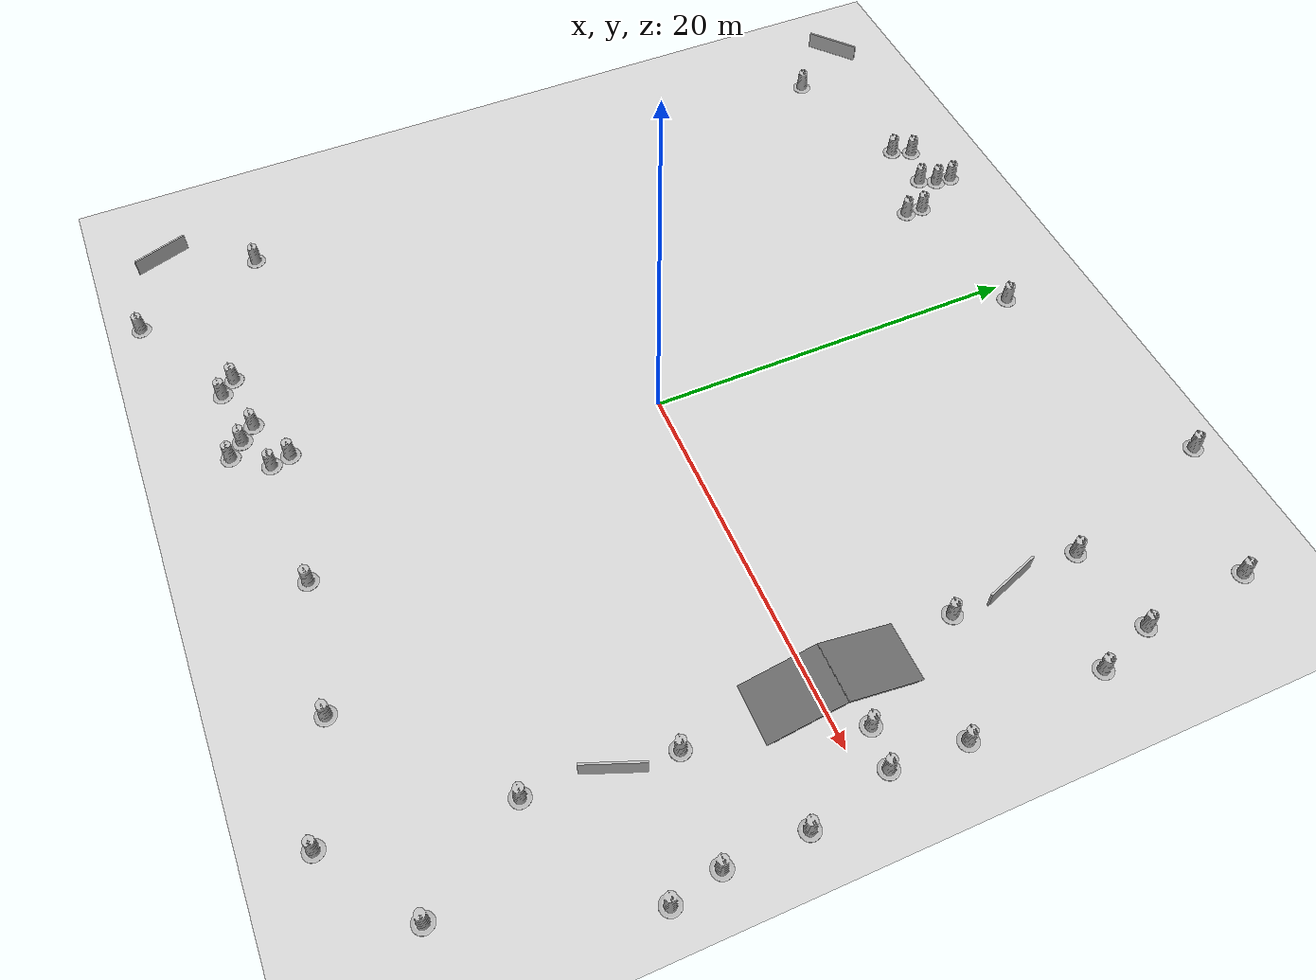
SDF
<sdf version="1.6">
 <world name="default">
  <model name="igvc_basic_ground">
   <static>1</static>
   <link name="link">
    <collision name="collision">
     <geometry><plane><normal>0 0 1</normal><size>50 50</size></plane></geometry>
     <surface><friction><ode><mu>100</mu><mu2>50</mu2></ode></friction></surface>
    </collision>
    <visual name="visual">
     <cast_shadows>0</cast_shadows>
     <geometry><plane><normal>0 0 1</normal><size>50 50</size></plane></geometry>
     <material>
      <script>
       <uri>model://igvc_basic_ground/materials/scripts</uri>
       <uri>model://igvc_basic_ground/materials/textures</uri>
       <name>igvc_pavement/Image</name>
      </script>
     </material>
    </visual>
    <velocity_decay><linear>0</linear><angular>0</angular></velocity_decay>
   </link>
  </model>
  <physics name="default_physics" default="0" type="ode">
   <max_step_size>0.001</max_step_size>
   <real_time_factor>1</real_time_factor>
   <real_time_update_rate>1000</real_time_update_rate>
  </physics>
  <scene><ambient>1.0 1.0 1.0 1</ambient><background>0.7 0.7 0.7 1</background><shadows>1</shadows></scene>
  <spherical_coordinates>
   <surface_model>EARTH_WGS84</surface_model>
   <latitude_deg>0</latitude_deg>
   <longitude_deg>0</longitude_deg>
   <elevation>0</elevation>
   <heading_deg>0</heading_deg>
  </spherical_coordinates>
  <model name="Construction Barrel_1">
   <link name="link">
    <inertial>
     <pose>0 0 0.4 0 -0 0</pose>
     <mass>500</mass>
     <inertia><ixx>51.2096</ixx><iyy>51.2096</iyy><izz>25</izz><ixy>0</ixy><ixz>0</ixz><iyz>0</iyz></inertia>
    </inertial>
    <collision name="collision">
     <geometry><mesh><uri>model://construction_barrel/meshes/construction_barrel.dae</uri></mesh></geometry>
    </collision>
    <visual name="visual">
     <geometry><mesh><uri>model://construction_barrel/meshes/construction_barrel.dae</uri></mesh></geometry>
    </visual>
    <velocity_decay><linear>0</linear><angular>0</angular></velocity_decay>
   </link>
   <pose>-17.75 -16.5 -4e-06 -5e-06 -7e-06 -0.002983</pose>
   <static>0</static>
  </model>
  <model name="Construction Barrel_2">
   <link name="link">
    <inertial>
     <pose>0 0 0.4 0 -0 0</pose>
     <mass>500</mass>
     <inertia><ixx>51.2096</ixx><iyy>51.2096</iyy><izz>25</izz><ixy>0</ixy><ixz>0</ixz><iyz>0</iyz></inertia>
    </inertial>
    <collision name="collision">
     <geometry><mesh><uri>model://construction_barrel/meshes/construction_barrel.dae</uri></mesh></geometry>
    </collision>
    <visual name="visual">
     <geometry><mesh><uri>model://construction_barrel/meshes/construction_barrel.dae</uri></mesh></geometry>
    </visual>
    <velocity_decay><linear>0</linear><angular>0</angular></velocity_decay>
   </link>
   <pose>-15.25 -23.25 -4e-06 -5e-06 -7e-06 -0.002768</pose>
   <static>0</static>
  </model>
  <model name="Construction Barrel_3">
   <link name="link">
    <inertial>
     <pose>0 0 0.4 0 -0 0</pose>
     <mass>500</mass>
     <inertia><ixx>51.2096</ixx><iyy>51.2096</iyy><izz>25</izz><ixy>0</ixy><ixz>0</ixz><iyz>0</iyz></inertia>
    </inertial>
    <collision name="collision">
     <geometry><mesh><uri>model://construction_barrel/meshes/construction_barrel.dae</uri></mesh></geometry>
    </collision>
    <visual name="visual">
     <geometry><mesh><uri>model://construction_barrel/meshes/construction_barrel.dae</uri></mesh></geometry>
    </visual>
    <velocity_decay><linear>0</linear><angular>0</angular></velocity_decay>
   </link>
   <pose>-10 -19.5 -4e-06 -5e-06 -7e-06 -0.002768</pose>
   <static>0</static>
  </model>
  <model name="Construction Barrel_4">
   <link name="link">
    <inertial>
     <pose>0 0 0.4 0 -0 0</pose>
     <mass>500</mass>
     <inertia><ixx>51.2096</ixx><iyy>51.2096</iyy><izz>25</izz><ixy>0</ixy><ixz>0</ixz><iyz>0</iyz></inertia>
    </inertial>
    <collision name="collision">
     <geometry><mesh><uri>model://construction_barrel/meshes/construction_barrel.dae</uri></mesh></geometry>
    </collision>
    <visual name="visual">
     <geometry><mesh><uri>model://construction_barrel/meshes/construction_barrel.dae</uri></mesh></geometry>
    </visual>
    <velocity_decay><linear>0</linear><angular>0</angular></velocity_decay>
   </link>
   <pose>-9.25 -20.25 0 1e-06 1e-06 -0.0028</pose>
   <static>0</static>
  </model>
  <model name="Construction Barrel_5">
   <link name="link">
    <inertial>
     <pose>0 0 0.4 0 -0 0</pose>
     <mass>500</mass>
     <inertia><ixx>51.2096</ixx><iyy>51.2096</iyy><izz>25</izz><ixy>0</ixy><ixz>0</ixz><iyz>0</iyz></inertia>
    </inertial>
    <collision name="collision">
     <geometry><mesh><uri>model://construction_barrel/meshes/construction_barrel.dae</uri></mesh></geometry>
    </collision>
    <visual name="visual">
     <geometry><mesh><uri>model://construction_barrel/meshes/construction_barrel.dae</uri></mesh></geometry>
    </visual>
    <velocity_decay><linear>0</linear><angular>0</angular></velocity_decay>
   </link>
   <pose>-6 -20 -4e-06 -5e-06 -7e-06 -0.002735</pose>
   <static>0</static>
  </model>
  <model name="Construction Barrel_6">
   <link name="link">
    <inertial>
     <pose>0 0 0.4 0 -0 0</pose>
     <mass>500</mass>
     <inertia><ixx>51.2096</ixx><iyy>51.2096</iyy><izz>25</izz><ixy>0</ixy><ixz>0</ixz><iyz>0</iyz></inertia>
    </inertial>
    <collision name="collision">
     <geometry><mesh><uri>model://construction_barrel/meshes/construction_barrel.dae</uri></mesh></geometry>
    </collision>
    <visual name="visual">
     <geometry><mesh><uri>model://construction_barrel/meshes/construction_barrel.dae</uri></mesh></geometry>
    </visual>
    <velocity_decay><linear>0</linear><angular>0</angular></velocity_decay>
   </link>
   <pose>-5.25 -20.75 -4e-06 -5e-06 -7e-06 -0.002679</pose>
   <static>0</static>
  </model>
  <model name="Construction Barrel_7">
   <link name="link">
    <inertial>
     <pose>0 0 0.4 0 -0 0</pose>
     <mass>500</mass>
     <inertia><ixx>51.2096</ixx><iyy>51.2096</iyy><izz>25</izz><ixy>0</ixy><ixz>0</ixz><iyz>0</iyz></inertia>
    </inertial>
    <collision name="collision">
     <geometry><mesh><uri>model://construction_barrel/meshes/construction_barrel.dae</uri></mesh></geometry>
    </collision>
    <visual name="visual">
     <geometry><mesh><uri>model://construction_barrel/meshes/construction_barrel.dae</uri></mesh></geometry>
    </visual>
    <velocity_decay><linear>0</linear><angular>0</angular></velocity_decay>
   </link>
   <pose>-6.75 -19.25 0 1e-06 1e-06 -0.002542</pose>
   <static>0</static>
  </model>
  <model name="Construction Barrel_8">
   <link name="link">
    <inertial>
     <pose>0 0 0.4 0 -0 0</pose>
     <mass>500</mass>
     <inertia><ixx>51.2096</ixx><iyy>51.2096</iyy><izz>25</izz><ixy>0</ixy><ixz>0</ixz><iyz>0</iyz></inertia>
    </inertial>
    <collision name="collision">
     <geometry><mesh><uri>model://construction_barrel/meshes/construction_barrel.dae</uri></mesh></geometry>
    </collision>
    <visual name="visual">
     <geometry><mesh><uri>model://construction_barrel/meshes/construction_barrel.dae</uri></mesh></geometry>
    </visual>
    <velocity_decay><linear>0</linear><angular>0</angular></velocity_decay>
   </link>
   <pose>-4.25 -18 -2e-06 -5e-06 -4e-06 0.001778</pose>
   <static>0</static>
  </model>
  <model name="Construction Barrel_9">
   <link name="link">
    <inertial>
     <pose>0 0 0.4 0 -0 0</pose>
     <mass>500</mass>
     <inertia><ixx>51.2096</ixx><iyy>51.2096</iyy><izz>25</izz><ixy>0</ixy><ixz>0</ixz><iyz>0</iyz></inertia>
    </inertial>
    <collision name="collision">
     <geometry><mesh><uri>model://construction_barrel/meshes/construction_barrel.dae</uri></mesh></geometry>
    </collision>
    <visual name="visual">
     <geometry><mesh><uri>model://construction_barrel/meshes/construction_barrel.dae</uri></mesh></geometry>
    </visual>
    <velocity_decay><linear>0</linear><angular>0</angular></velocity_decay>
   </link>
   <pose>-4 -19 -3e-06 -5e-06 -4e-06 -0.041479</pose>
   <static>0</static>
  </model>
  <model name="Construction Barrel_10">
   <link name="link">
    <inertial>
     <pose>0 0 0.4 0 -0 0</pose>
     <mass>500</mass>
     <inertia><ixx>51.2096</ixx><iyy>51.2096</iyy><izz>25</izz><ixy>0</ixy><ixz>0</ixz><iyz>0</iyz></inertia>
    </inertial>
    <collision name="collision">
     <geometry><mesh><uri>model://construction_barrel/meshes/construction_barrel.dae</uri></mesh></geometry>
    </collision>
    <visual name="visual">
     <geometry><mesh><uri>model://construction_barrel/meshes/construction_barrel.dae</uri></mesh></geometry>
    </visual>
    <velocity_decay><linear>0</linear><angular>0</angular></velocity_decay>
   </link>
   <pose>3 -19 -0 1e-06 -1e-06 0.05713</pose>
   <static>0</static>
  </model>
  <model name="Construction Barrel_11">
   <link name="link">
    <inertial>
     <pose>0 0 0.4 0 -0 0</pose>
     <mass>500</mass>
     <inertia><ixx>51.2096</ixx><iyy>51.2096</iyy><izz>25</izz><ixy>0</ixy><ixz>0</ixz><iyz>0</iyz></inertia>
    </inertial>
    <collision name="collision">
     <geometry><mesh><uri>model://construction_barrel/meshes/construction_barrel.dae</uri></mesh></geometry>
    </collision>
    <visual name="visual">
     <geometry><mesh><uri>model://construction_barrel/meshes/construction_barrel.dae</uri></mesh></geometry>
    </visual>
    <velocity_decay><linear>0</linear><angular>0</angular></velocity_decay>
   </link>
   <pose>9.75 -20 -1e-06 0 5e-06 0.03848</pose>
   <static>0</static>
  </model>
  <model name="Construction Barrel_12">
   <link name="link">
    <inertial>
     <pose>0 0 0.4 0 -0 0</pose>
     <mass>500</mass>
     <inertia><ixx>51.2096</ixx><iyy>51.2096</iyy><izz>25</izz><ixy>0</ixy><ixz>0</ixz><iyz>0</iyz></inertia>
    </inertial>
    <collision name="collision">
     <geometry><mesh><uri>model://construction_barrel/meshes/construction_barrel.dae</uri></mesh></geometry>
    </collision>
    <visual name="visual">
     <geometry><mesh><uri>model://construction_barrel/meshes/construction_barrel.dae</uri></mesh></geometry>
    </visual>
    <velocity_decay><linear>0</linear><angular>0</angular></velocity_decay>
   </link>
   <pose>15.25 -22 -4e-06 -5e-06 -7e-06 -0.002189</pose>
   <static>0</static>
  </model>
  <model name="Construction Barrel_13">
   <link name="link">
    <inertial>
     <pose>0 0 0.4 0 -0 0</pose>
     <mass>500</mass>
     <inertia><ixx>51.2096</ixx><iyy>51.2096</iyy><izz>25</izz><ixy>0</ixy><ixz>0</ixz><iyz>0</iyz></inertia>
    </inertial>
    <collision name="collision">
     <geometry><mesh><uri>model://construction_barrel/meshes/construction_barrel.dae</uri></mesh></geometry>
    </collision>
    <visual name="visual">
     <geometry><mesh><uri>model://construction_barrel/meshes/construction_barrel.dae</uri></mesh></geometry>
    </visual>
    <velocity_decay><linear>0</linear><angular>0</angular></velocity_decay>
   </link>
   <pose>19.75 -18.75 -4e-06 -5e-06 -7e-06 -0.002115</pose>
   <static>0</static>
  </model>
  <model name="Construction Barrel_14">
   <link name="link">
    <inertial>
     <pose>0 0 0.4 0 -0 0</pose>
     <mass>500</mass>
     <inertia><ixx>51.2096</ixx><iyy>51.2096</iyy><izz>25</izz><ixy>0</ixy><ixz>0</ixz><iyz>0</iyz></inertia>
    </inertial>
    <collision name="collision">
     <geometry><mesh><uri>model://construction_barrel/meshes/construction_barrel.dae</uri></mesh></geometry>
    </collision>
    <visual name="visual">
     <geometry><mesh><uri>model://construction_barrel/meshes/construction_barrel.dae</uri></mesh></geometry>
    </visual>
    <velocity_decay><linear>0</linear><angular>0</angular></velocity_decay>
   </link>
   <pose>16.5 -13.5 -0 -1e-06 -0 -0.047595</pose>
   <static>0</static>
  </model>
  <model name="Construction Barrel_15">
   <link name="link">
    <inertial>
     <pose>0 0 0.4 0 -0 0</pose>
     <mass>500</mass>
     <inertia><ixx>51.2096</ixx><iyy>51.2096</iyy><izz>25</izz><ixy>0</ixy><ixz>0</ixz><iyz>0</iyz></inertia>
    </inertial>
    <collision name="collision">
     <geometry><mesh><uri>model://construction_barrel/meshes/construction_barrel.dae</uri></mesh></geometry>
    </collision>
    <visual name="visual">
     <geometry><mesh><uri>model://construction_barrel/meshes/construction_barrel.dae</uri></mesh></geometry>
    </visual>
    <velocity_decay><linear>0</linear><angular>0</angular></velocity_decay>
   </link>
   <pose>23 -9.5 1e-06 3e-06 2e-06 -3e-05</pose>
   <static>0</static>
  </model>
  <model name="Construction Barrel_16">
   <link name="link">
    <inertial>
     <pose>0 0 0.4 0 -0 0</pose>
     <mass>500</mass>
     <inertia><ixx>51.2096</ixx><iyy>51.2096</iyy><izz>25</izz><ixy>0</ixy><ixz>0</ixz><iyz>0</iyz></inertia>
    </inertial>
    <collision name="collision">
     <geometry><mesh><uri>model://construction_barrel/meshes/construction_barrel.dae</uri></mesh></geometry>
    </collision>
    <visual name="visual">
     <geometry><mesh><uri>model://construction_barrel/meshes/construction_barrel.dae</uri></mesh></geometry>
    </visual>
    <velocity_decay><linear>0</linear><angular>0</angular></velocity_decay>
   </link>
   <pose>17.25 -6.5 -4e-06 -5e-06 -7e-06 -0.001843</pose>
   <static>0</static>
  </model>
  <model name="Construction Barrel_17">
   <link name="link">
    <inertial>
     <pose>0 0 0.4 0 -0 0</pose>
     <mass>500</mass>
     <inertia><ixx>51.2096</ixx><iyy>51.2096</iyy><izz>25</izz><ixy>0</ixy><ixz>0</ixz><iyz>0</iyz></inertia>
    </inertial>
    <collision name="collision">
     <geometry><mesh><uri>model://construction_barrel/meshes/construction_barrel.dae</uri></mesh></geometry>
    </collision>
    <visual name="visual">
     <geometry><mesh><uri>model://construction_barrel/meshes/construction_barrel.dae</uri></mesh></geometry>
    </visual>
    <velocity_decay><linear>0</linear><angular>0</angular></velocity_decay>
   </link>
   <pose>22.5 -7 -0 1e-06 -1e-06 -0.000916</pose>
   <static>0</static>
  </model>
  <model name="Construction Barrel_18">
   <link name="link">
    <inertial>
     <pose>0 0 0.4 0 -0 0</pose>
     <mass>500</mass>
     <inertia><ixx>51.2096</ixx><iyy>51.2096</iyy><izz>25</izz><ixy>0</ixy><ixz>0</ixz><iyz>0</iyz></inertia>
    </inertial>
    <collision name="collision">
     <geometry><mesh><uri>model://construction_barrel/meshes/construction_barrel.dae</uri></mesh></geometry>
    </collision>
    <visual name="visual">
     <geometry><mesh><uri>model://construction_barrel/meshes/construction_barrel.dae</uri></mesh></geometry>
    </visual>
    <velocity_decay><linear>0</linear><angular>0</angular></velocity_decay>
   </link>
   <pose>22.5 -3 -4e-06 -5e-06 -7e-06 -0.001749</pose>
   <static>0</static>
  </model>
  <model name="Construction Barrel_19">
   <link name="link">
    <inertial>
     <pose>0 0 0.4 0 -0 0</pose>
     <mass>500</mass>
     <inertia><ixx>51.2096</ixx><iyy>51.2096</iyy><izz>25</izz><ixy>0</ixy><ixz>0</ixz><iyz>0</iyz></inertia>
    </inertial>
    <collision name="collision">
     <geometry><mesh><uri>model://construction_barrel/meshes/construction_barrel.dae</uri></mesh></geometry>
    </collision>
    <visual name="visual">
     <geometry><mesh><uri>model://construction_barrel/meshes/construction_barrel.dae</uri></mesh></geometry>
    </visual>
    <velocity_decay><linear>0</linear><angular>0</angular></velocity_decay>
   </link>
   <pose>21.5 1.25 -2e-06 7e-06 -2e-06 -2.8e-05</pose>
   <static>0</static>
  </model>
  <model name="Construction Barrel_20">
   <link name="link">
    <inertial>
     <pose>0 0 0.4 0 -0 0</pose>
     <mass>500</mass>
     <inertia><ixx>51.2096</ixx><iyy>51.2096</iyy><izz>25</izz><ixy>0</ixy><ixz>0</ixz><iyz>0</iyz></inertia>
    </inertial>
    <collision name="collision">
     <geometry><mesh><uri>model://construction_barrel/meshes/construction_barrel.dae</uri></mesh></geometry>
    </collision>
    <visual name="visual">
     <geometry><mesh><uri>model://construction_barrel/meshes/construction_barrel.dae</uri></mesh></geometry>
    </visual>
    <velocity_decay><linear>0</linear><angular>0</angular></velocity_decay>
   </link>
   <pose>19.5 1.5 -1e-06 0 5e-06 0.000531</pose>
   <static>0</static>
  </model>
  <model name="Construction Barrel_21">
   <link name="link">
    <inertial>
     <pose>0 0 0.4 0 -0 0</pose>
     <mass>500</mass>
     <inertia><ixx>51.2096</ixx><iyy>51.2096</iyy><izz>25</izz><ixy>0</ixy><ixz>0</ixz><iyz>0</iyz></inertia>
    </inertial>
    <collision name="collision">
     <geometry><mesh><uri>model://construction_barrel/meshes/construction_barrel.dae</uri></mesh></geometry>
    </collision>
    <visual name="visual">
     <geometry><mesh><uri>model://construction_barrel/meshes/construction_barrel.dae</uri></mesh></geometry>
    </visual>
    <velocity_decay><linear>0</linear><angular>0</angular></velocity_decay>
   </link>
   <pose>21.75 5 -0 0 0 -0.001333</pose>
   <static>0</static>
  </model>
  <model name="Construction Barrel_22">
   <link name="link">
    <inertial>
     <pose>0 0 0.4 0 -0 0</pose>
     <mass>500</mass>
     <inertia><ixx>51.2096</ixx><iyy>51.2096</iyy><izz>25</izz><ixy>0</ixy><ixz>0</ixz><iyz>0</iyz></inertia>
    </inertial>
    <collision name="collision">
     <geometry><mesh><uri>model://construction_barrel/meshes/construction_barrel.dae</uri></mesh></geometry>
    </collision>
    <visual name="visual">
     <geometry><mesh><uri>model://construction_barrel/meshes/construction_barrel.dae</uri></mesh></geometry>
    </visual>
    <velocity_decay><linear>0</linear><angular>0</angular></velocity_decay>
   </link>
   <pose>21.25 12.25 -2e-06 -5e-06 -4e-06 -0.001278</pose>
   <static>0</static>
  </model>
  <model name="Construction Barrel_23">
   <link name="link">
    <inertial>
     <pose>0 0 0.4 0 -0 0</pose>
     <mass>500</mass>
     <inertia><ixx>51.2096</ixx><iyy>51.2096</iyy><izz>25</izz><ixy>0</ixy><ixz>0</ixz><iyz>0</iyz></inertia>
    </inertial>
    <collision name="collision">
     <geometry><mesh><uri>model://construction_barrel/meshes/construction_barrel.dae</uri></mesh></geometry>
    </collision>
    <visual name="visual">
     <geometry><mesh><uri>model://construction_barrel/meshes/construction_barrel.dae</uri></mesh></geometry>
    </visual>
    <velocity_decay><linear>0</linear><angular>0</angular></velocity_decay>
   </link>
   <pose>16.25 7.5 -2e-06 -5e-06 -4e-06 -0.001123</pose>
   <static>0</static>
  </model>
  <model name="Construction Barrel_24">
   <link name="link">
    <inertial>
     <pose>0 0 0.4 0 -0 0</pose>
     <mass>500</mass>
     <inertia><ixx>51.2096</ixx><iyy>51.2096</iyy><izz>25</izz><ixy>0</ixy><ixz>0</ixz><iyz>0</iyz></inertia>
    </inertial>
    <collision name="collision">
     <geometry><mesh><uri>model://construction_barrel/meshes/construction_barrel.dae</uri></mesh></geometry>
    </collision>
    <visual name="visual">
     <geometry><mesh><uri>model://construction_barrel/meshes/construction_barrel.dae</uri></mesh></geometry>
    </visual>
    <velocity_decay><linear>0</linear><angular>0</angular></velocity_decay>
   </link>
   <pose>20.25 15.25 -2e-06 -5e-06 -4e-06 -0.001053</pose>
   <static>0</static>
  </model>
  <model name="Construction Barrel_25">
   <link name="link">
    <inertial>
     <pose>0 0 0.4 0 -0 0</pose>
     <mass>500</mass>
     <inertia><ixx>51.2096</ixx><iyy>51.2096</iyy><izz>25</izz><ixy>0</ixy><ixz>0</ixz><iyz>0</iyz></inertia>
    </inertial>
    <collision name="collision">
     <geometry><mesh><uri>model://construction_barrel/meshes/construction_barrel.dae</uri></mesh></geometry>
    </collision>
    <visual name="visual">
     <geometry><mesh><uri>model://construction_barrel/meshes/construction_barrel.dae</uri></mesh></geometry>
    </visual>
    <velocity_decay><linear>0</linear><angular>0</angular></velocity_decay>
   </link>
   <pose>15.75 14.5 -2e-06 -5e-06 -4e-06 -0.001035</pose>
   <static>0</static>
  </model>
  <model name="Construction Barrel_26">
   <link name="link">
    <inertial>
     <pose>0 0 0.4 0 -0 0</pose>
     <mass>500</mass>
     <inertia><ixx>51.2096</ixx><iyy>51.2096</iyy><izz>25</izz><ixy>0</ixy><ixz>0</ixz><iyz>0</iyz></inertia>
    </inertial>
    <collision name="collision">
     <geometry><mesh><uri>model://construction_barrel/meshes/construction_barrel.dae</uri></mesh></geometry>
    </collision>
    <visual name="visual">
     <geometry><mesh><uri>model://construction_barrel/meshes/construction_barrel.dae</uri></mesh></geometry>
    </visual>
    <velocity_decay><linear>0</linear><angular>0</angular></velocity_decay>
   </link>
   <pose>19.75 21 -2e-06 -5e-06 -4e-06 -0.001008</pose>
   <static>0</static>
  </model>
  <model name="Construction Barrel_27">
   <link name="link">
    <inertial>
     <pose>0 0 0.4 0 -0 0</pose>
     <mass>500</mass>
     <inertia><ixx>51.2096</ixx><iyy>51.2096</iyy><izz>25</izz><ixy>0</ixy><ixz>0</ixz><iyz>0</iyz></inertia>
    </inertial>
    <collision name="collision">
     <geometry><mesh><uri>model://construction_barrel/meshes/construction_barrel.dae</uri></mesh></geometry>
    </collision>
    <visual name="visual">
     <geometry><mesh><uri>model://construction_barrel/meshes/construction_barrel.dae</uri></mesh></geometry>
    </visual>
    <velocity_decay><linear>0</linear><angular>0</angular></velocity_decay>
   </link>
   <pose>13 23.25 -1e-06 3e-06 -0 -0.000859</pose>
   <static>0</static>
  </model>
  <model name="Construction Barrel_28">
   <link name="link">
    <inertial>
     <pose>0 0 0.4 0 -0 0</pose>
     <mass>500</mass>
     <inertia><ixx>51.2096</ixx><iyy>51.2096</iyy><izz>25</izz><ixy>0</ixy><ixz>0</ixz><iyz>0</iyz></inertia>
    </inertial>
    <collision name="collision">
     <geometry><mesh><uri>model://construction_barrel/meshes/construction_barrel.dae</uri></mesh></geometry>
    </collision>
    <visual name="visual">
     <geometry><mesh><uri>model://construction_barrel/meshes/construction_barrel.dae</uri></mesh></geometry>
    </visual>
    <velocity_decay><linear>0</linear><angular>0</angular></velocity_decay>
   </link>
   <pose>-18.75 17.75 -1e-06 3e-06 -0 -0.000838</pose>
   <static>0</static>
  </model>
  <model name="Construction Barrel_29">
   <link name="link">
    <inertial>
     <pose>0 0 0.4 0 -0 0</pose>
     <mass>500</mass>
     <inertia><ixx>51.2096</ixx><iyy>51.2096</iyy><izz>25</izz><ixy>0</ixy><ixz>0</ixz><iyz>0</iyz></inertia>
    </inertial>
    <collision name="collision">
     <geometry><mesh><uri>model://construction_barrel/meshes/construction_barrel.dae</uri></mesh></geometry>
    </collision>
    <visual name="visual">
     <geometry><mesh><uri>model://construction_barrel/meshes/construction_barrel.dae</uri></mesh></geometry>
    </visual>
    <velocity_decay><linear>0</linear><angular>0</angular></velocity_decay>
   </link>
   <pose>-11.5 20 -0 0 0 -0.000817</pose>
   <static>0</static>
  </model>
  <model name="Construction Barrel_30">
   <link name="link">
    <inertial>
     <pose>0 0 0.4 0 -0 0</pose>
     <mass>500</mass>
     <inertia><ixx>51.2096</ixx><iyy>51.2096</iyy><izz>25</izz><ixy>0</ixy><ixz>0</ixz><iyz>0</iyz></inertia>
    </inertial>
    <collision name="collision">
     <geometry><mesh><uri>model://construction_barrel/meshes/construction_barrel.dae</uri></mesh></geometry>
    </collision>
    <visual name="visual">
     <geometry><mesh><uri>model://construction_barrel/meshes/construction_barrel.dae</uri></mesh></geometry>
    </visual>
    <velocity_decay><linear>0</linear><angular>0</angular></velocity_decay>
   </link>
   <pose>-11 21 -0 0 0 -0.001902</pose>
   <static>0</static>
  </model>
  <model name="Construction Barrel_31">
   <link name="link">
    <inertial>
     <pose>0 0 0.4 0 -0 0</pose>
     <mass>500</mass>
     <inertia><ixx>51.2096</ixx><iyy>51.2096</iyy><izz>25</izz><ixy>0</ixy><ixz>0</ixz><iyz>0</iyz></inertia>
    </inertial>
    <collision name="collision">
     <geometry><mesh><uri>model://construction_barrel/meshes/construction_barrel.dae</uri></mesh></geometry>
    </collision>
    <visual name="visual">
     <geometry><mesh><uri>model://construction_barrel/meshes/construction_barrel.dae</uri></mesh></geometry>
    </visual>
    <velocity_decay><linear>0</linear><angular>0</angular></velocity_decay>
   </link>
   <pose>-8.25 22 0 0 0 -0.000748</pose>
   <static>0</static>
  </model>
  <model name="Construction Barrel_32">
   <link name="link">
    <inertial>
     <pose>0 0 0.4 0 -0 0</pose>
     <mass>500</mass>
     <inertia><ixx>51.2096</ixx><iyy>51.2096</iyy><izz>25</izz><ixy>0</ixy><ixz>0</ixz><iyz>0</iyz></inertia>
    </inertial>
    <collision name="collision">
     <geometry><mesh><uri>model://construction_barrel/meshes/construction_barrel.dae</uri></mesh></geometry>
    </collision>
    <visual name="visual">
     <geometry><mesh><uri>model://construction_barrel/meshes/construction_barrel.dae</uri></mesh></geometry>
    </visual>
    <velocity_decay><linear>0</linear><angular>0</angular></velocity_decay>
   </link>
   <pose>1 20.00 -4e-06 -5e-06 -7e-06 -0.000719</pose>
   <static>0</static>
  </model>
  <model name="Construction Barrel_33">
   <link name="link">
    <inertial>
     <pose>0 0 0.4 0 -0 0</pose>
     <mass>500</mass>
     <inertia><ixx>51.2096</ixx><iyy>51.2096</iyy><izz>25</izz><ixy>0</ixy><ixz>0</ixz><iyz>0</iyz></inertia>
    </inertial>
    <collision name="collision">
     <geometry><mesh><uri>model://construction_barrel/meshes/construction_barrel.dae</uri></mesh></geometry>
    </collision>
    <visual name="visual">
     <geometry><mesh><uri>model://construction_barrel/meshes/construction_barrel.dae</uri></mesh></geometry>
    </visual>
    <velocity_decay><linear>0</linear><angular>0</angular></velocity_decay>
   </link>
   <pose>-6.75 18.25 -4e-06 -5e-06 -7e-06 -0.000654</pose>
   <static>0</static>
  </model>
  <model name="Construction Barrel_34">
   <link name="link">
    <inertial>
     <pose>0 0 0.4 0 -0 0</pose>
     <mass>500</mass>
     <inertia><ixx>51.2096</ixx><iyy>51.2096</iyy><izz>25</izz><ixy>0</ixy><ixz>0</ixz><iyz>0</iyz></inertia>
    </inertial>
    <collision name="collision">
     <geometry><mesh><uri>model://construction_barrel/meshes/construction_barrel.dae</uri></mesh></geometry>
    </collision>
    <visual name="visual">
     <geometry><mesh><uri>model://construction_barrel/meshes/construction_barrel.dae</uri></mesh></geometry>
    </visual>
    <velocity_decay><linear>0</linear><angular>0</angular></velocity_decay>
   </link>
   <pose>-8.3 21.1 -4e-06 -5e-06 -7e-06 -0.000625</pose>
   <static>0</static>
  </model>
  <model name="Construction Barrel_35">
   <link name="link">
    <inertial>
     <pose>0 0 0.4 0 -0 0</pose>
     <mass>500</mass>
     <inertia><ixx>51.2096</ixx><iyy>51.2096</iyy><izz>25</izz><ixy>0</ixy><ixz>0</ixz><iyz>0</iyz></inertia>
    </inertial>
    <collision name="collision">
     <geometry><mesh><uri>model://construction_barrel/meshes/construction_barrel.dae</uri></mesh></geometry>
    </collision>
    <visual name="visual">
     <geometry><mesh><uri>model://construction_barrel/meshes/construction_barrel.dae</uri></mesh></geometry>
    </visual>
    <velocity_decay><linear>0</linear><angular>0</angular></velocity_decay>
   </link>
   <pose>-8.75 20.25 -1e-06 -1e-06 -0 -0.004196</pose>
   <static>0</static>
  </model>
  <model name="Construction Barrel_36">
   <link name="link">
    <inertial>
     <pose>0 0 0.4 0 -0 0</pose>
     <mass>500</mass>
     <inertia><ixx>51.2096</ixx><iyy>51.2096</iyy><izz>25</izz><ixy>0</ixy><ixz>0</ixz><iyz>0</iyz></inertia>
    </inertial>
    <collision name="collision">
     <geometry><mesh><uri>model://construction_barrel/meshes/construction_barrel.dae</uri></mesh></geometry>
    </collision>
    <visual name="visual">
     <geometry><mesh><uri>model://construction_barrel/meshes/construction_barrel.dae</uri></mesh></geometry>
    </visual>
    <velocity_decay><linear>0</linear><angular>0</angular></velocity_decay>
   </link>
   <pose>-6.75 19.25 -9e-06 -3e-06 -6e-06 -0.005015</pose>
   <static>0</static>
  </model>
  <model name="barricade_1">
   <static>1</static>
   <pose>16.0 10.65 0.5 0 -0 1.9</pose>
   <link name="link">
    <collision name="collision"><geometry><box><size>3 0.1 1</size></box></geometry></collision>
    <visual name="visual"><geometry><box><size>3 0.1 1</size></box></geometry></visual>
   </link>
  </model>
  <model name="barricade_2">
   <static>1</static>
   <pose>17.0 -9.5 0.5 0 -0 1.2</pose>
   <link name="link">
    <collision name="collision"><geometry><box><size>3 0.1 1</size></box></geometry></collision>
    <visual name="visual"><geometry><box><size>3 0.1 1</size></box></geometry></visual>
   </link>
  </model>
  <model name="barricade_3">
   <static>1</static>
   <pose>-19.8 -21.17 0.5 0 -0 1.9</pose>
   <link name="link">
    <collision name="collision"><geometry><box><size>3 0.1 1</size></box></geometry></collision>
    <visual name="visual"><geometry><box><size>3 0.1 1</size></box></geometry></visual>
   </link>
  </model>
  <model name="barricade_4">
   <static>1</static>
   <pose>-21 21 0.5 0 -0 0.7</pose>
   <link name="link">
    <collision name="collision"><geometry><box><size>3 0.1 1</size></box></geometry></collision>
    <visual name="visual"><geometry><box><size>3 0.1 1</size></box></geometry></visual>
   </link>
  </model>
  <model name="ramp_up">
   <static>1</static>
   <pose>17 -2 0.15 0.2612 -0 0</pose>
   <link name="link">
    <collision name="collision"><geometry><box><size>3 6 0.1</size></box></geometry></collision>
    <visual name="visual">
     <geometry><box><size>3 6 0.1</size></box></geometry>
     <material>
      <ambient>0.4 0.7 0.6 1</ambient>
      <specular>0.2 0.2 0.2 64</specular>
      <diffuse>0.4 0.4 0.4 1</diffuse>
     </material>
    </visual>
   </link>
  </model>
  <model name="ramp_down">
   <static>1</static>
   <pose>17 3.75 0.15 0.2612 -0 3.14</pose>
   <link name="link">
    <collision name="collision"><geometry><box><size>3 6 0.1</size></box></geometry></collision>
    <visual name="visual">
     <geometry><box><size>3 6 0.1</size></box></geometry>
     <material>
      <ambient>0.4 0.7 0.6 1</ambient>
      <specular>0.2 0.2 0.2 64</specular>
      <diffuse>0.4 0.4 0.4 1</diffuse>
     </material>
    </visual>
   </link>
  </model>
  <gravity>0 0 -9.8</gravity>
  <magnetic_field>6e-06 2.3e-05 -4.2e-05</magnetic_field>
  <atmosphere type="adiabatic"/>
  <audio><device>default</device></audio>
 </world>
</sdf>
